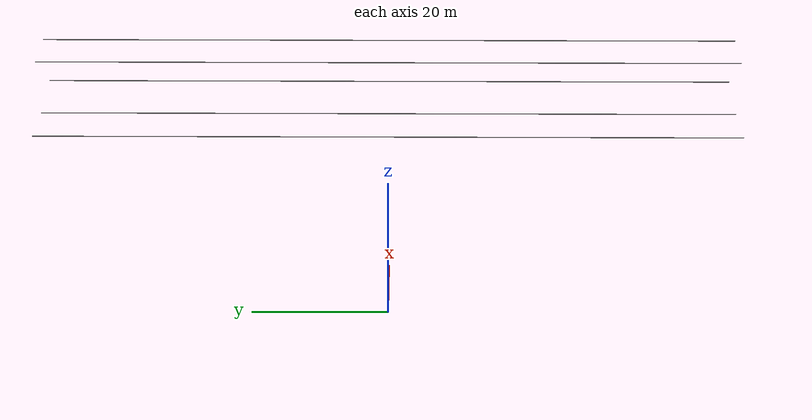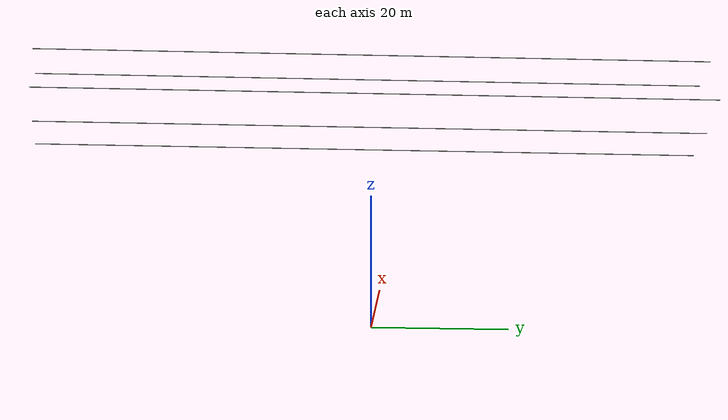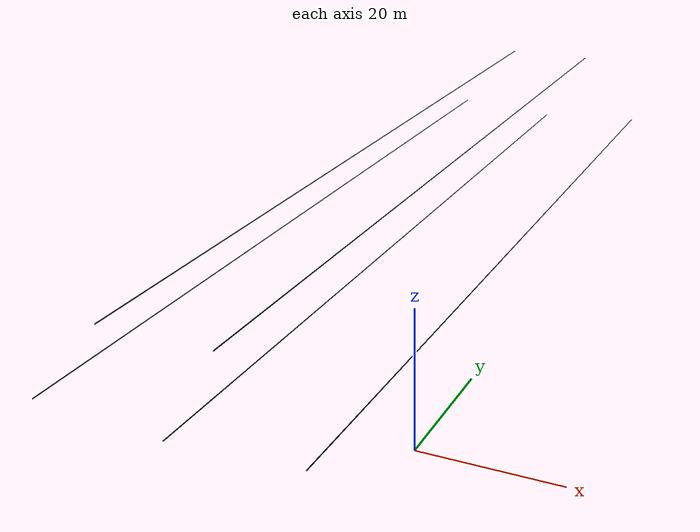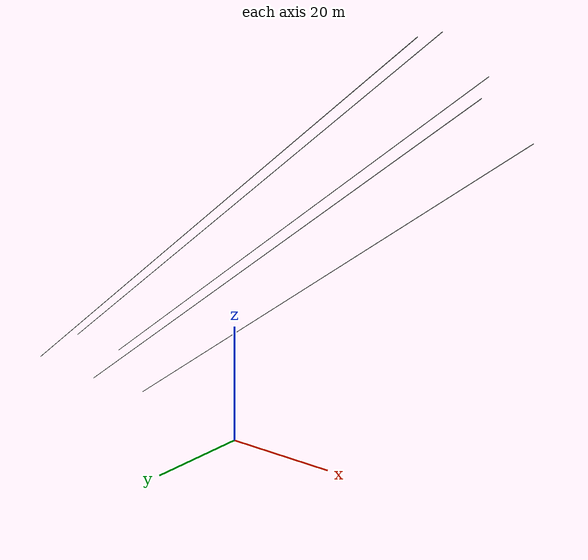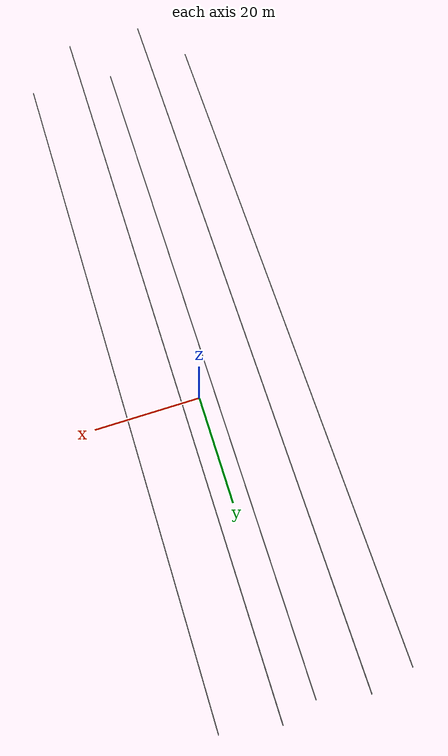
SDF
<?xml version='1.0'?>
<sdf version='1.6'>
  <model name='v4uav_simple_circuit_line'>
    <link name='link'>
      <self_collide>0</self_collide>
      <enable_wind>0</enable_wind>
      <kinematic>0</kinematic>
      <pose frame=''>0 0 0 1.5708 -0 0</pose>
      <gravity>1</gravity>
      <inertial>
        <mass>1</mass>
        <pose frame=''>0 0 0 1.5708 -0 0</pose>
        <inertia>
          <ixx>1</ixx>
          <ixy>0</ixy>
          <ixz>0</ixz>
          <iyy>1</iyy>
          <iyz>0</iyz>
          <izz>1</izz>
        </inertia>
      </inertial>
      <visual name='ModelPreview_1::link::visual_1'>
        <cast_shadows>0</cast_shadows>
        <geometry>
          <cylinder>
            <radius>0.05</radius>
            <length>100</length>
          </cylinder>
        </geometry>
        <material>
          <shader type='pixel'>
            <normal_map>__default__</normal_map>
          </shader>
          <script>
            <name>ModelPreview_33::link::visual_MATERIAL_</name>
            <uri>__default__</uri>
          </script>
          <ambient>0 0 0 1</ambient>
          <diffuse>0 0 0 1</diffuse>
          <specular>0 0 0 1</specular>
          <emissive>0 0 0 1</emissive>
        </material>
        <pose frame=''>-5.5 40 0 0 -0 0</pose>
        <transparency>0</transparency>
      </visual>
      <visual name='visual'>
        <cast_shadows>0</cast_shadows>
        <geometry>
          <cylinder>
            <radius>0.05</radius>
            <length>100</length>
          </cylinder>
        </geometry>
        <material>
          <shader type='pixel'>
            <normal_map>__default__</normal_map>
          </shader>
          <script>
            <name>ModelPreview_33::link::visual_MATERIAL_</name>
            <uri>__default__</uri>
          </script>
          <ambient>0 0 0 1</ambient>
          <diffuse>0 0 0 1</diffuse>
          <specular>0 0 0 1</specular>
          <emissive>0 0 0 1</emissive>
        </material>
        <pose frame=''>5.5 40 0 0 -0 0</pose>
        <transparency>0</transparency>
      </visual>
      <visual name='ModelPreview_1::link::visual_4'>
        <cast_shadows>0</cast_shadows>
        <geometry>
          <cylinder>
            <radius>0.05</radius>
            <length>100</length>
          </cylinder>
        </geometry>
        <material>
          <shader type='pixel'>
            <normal_map>__default__</normal_map>
          </shader>
          <script>
            <name>ModelPreview_33::link::visual_MATERIAL_</name>
            <uri>__default__</uri>
          </script>
          <ambient>0 0 0 1</ambient>
          <diffuse>0 0 0 1</diffuse>
          <specular>0 0 0 1</specular>
          <emissive>0 0 0 1</emissive>
        </material>
        <pose frame=''>0 30.64 0 0 -0 0</pose>
        <transparency>0</transparency>
      </visual>
      <visual name='ModelPreview_1::link::visual_3'>
        <cast_shadows>0</cast_shadows>
        <geometry>
          <cylinder>
            <radius>0.05</radius>
            <length>100</length>
          </cylinder>
        </geometry>
        <material>
          <shader type='pixel'>
            <normal_map>__default__</normal_map>
          </shader>
          <script>
            <name>ModelPreview_33::link::visual_MATERIAL_</name>
            <uri>__default__</uri>
          </script>
          <ambient>0 0 0 1</ambient>
          <diffuse>0 0 0 1</diffuse>
          <specular>0 0 0 1</specular>
          <emissive>0 0 0 1</emissive>
        </material>
        <pose frame=''>-13.1 31.42 0 0 -0 0</pose>
        <transparency>0</transparency>
      </visual>
      <visual name='ModelPreview_1::link::visual_2'>
        <cast_shadows>0</cast_shadows>
        <geometry>
          <cylinder>
            <radius>0.05</radius>
            <length>100</length>
          </cylinder>
        </geometry>
        <material>
          <shader type='pixel'>
            <normal_map>__default__</normal_map>
          </shader>
          <script>
            <name>ModelPreview_33::link::visual_MATERIAL_</name>
            <uri>__default__</uri>
          </script>
          <ambient>0 0 0 1</ambient>
          <diffuse>0 0 0 1</diffuse>
          <specular>0 0 0 1</specular>
          <emissive>0 0 0 1</emissive>
        </material>
        <pose frame=''>13.1 31.42 0 0 -0 0</pose>
        <transparency>0</transparency>
      </visual>
    </link>
    <static>1</static>
    <allow_auto_disable>1</allow_auto_disable>
  </model>
</sdf>
